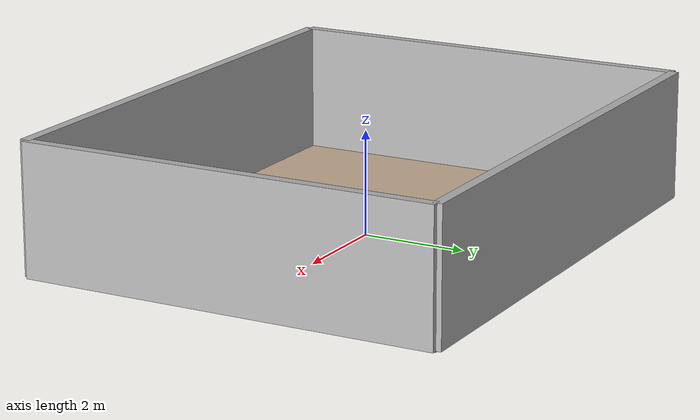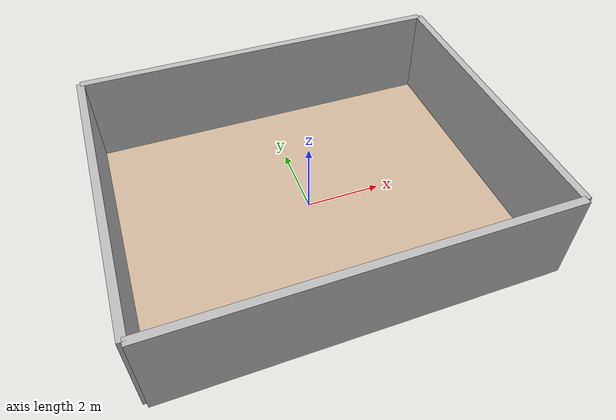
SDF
<sdf version="1.8">
 <world name="house">
  <plugin filename="gz-sim-physics-system" name="gz::sim::systems::Physics"/>
  <plugin filename="gz-sim-user-commands-system" name="gz::sim::systems::UserCommands"/>
  <plugin filename="gz-sim-scene-broadcaster-system" name="gz::sim::systems::SceneBroadcaster"/>
  <plugin filename="gz-sim-sensors-system" name="gz::sim::systems::Sensors">
   <render_engine>ogre2</render_engine>
  </plugin>
  <light type="directional" name="sun">
   <cast_shadows>false</cast_shadows>
   <pose>0 0 10 0 0 0</pose>
   <diffuse>1 1 1 1</diffuse>
   <specular>0.2 0.2 0.2 1</specular>
   <direction>-0.5 0.1 -0.9</direction>
  </light>
  <scene><ambient>0.6 0.6 0.6 1</ambient><background>0.8 0.8 0.8 1</background><shadows>false</shadows></scene>
  <model name="floor">
   <static>true</static>
   <link name="link">
    <collision name="collision"><geometry><box><size>10 8 0.05</size></box></geometry></collision>
    <visual name="visual">
     <geometry><box><size>10 8 0.05</size></box></geometry>
     <material><ambient>0.8 0.7 0.6 1</ambient><diffuse>0.8 0.7 0.6 1</diffuse></material>
    </visual>
   </link>
  </model>
  <model name="wall_south">
   <static>true</static>
   <pose>0 -4 1.25 0 0 0</pose>
   <link name="link">
    <collision name="collision"><geometry><box><size>10 0.2 2.5</size></box></geometry></collision>
    <visual name="visual"><geometry><box><size>10 0.2 2.5</size></box></geometry></visual>
   </link>
  </model>
  <model name="wall_north">
   <static>true</static>
   <pose>0 4 1.25 0 0 0</pose>
   <link name="link">
    <collision name="collision"><geometry><box><size>10 0.2 2.5</size></box></geometry></collision>
    <visual name="visual"><geometry><box><size>10 0.2 2.5</size></box></geometry></visual>
   </link>
  </model>
  <model name="wall_west">
   <static>true</static>
   <pose>-5 0 1.25 0 0 0</pose>
   <link name="link">
    <collision name="collision"><geometry><box><size>0.2 8 2.5</size></box></geometry></collision>
    <visual name="visual"><geometry><box><size>0.2 8 2.5</size></box></geometry></visual>
   </link>
  </model>
  <model name="wall_east">
   <static>true</static>
   <pose>5 0 1.25 0 0 0</pose>
   <link name="link">
    <collision name="collision"><geometry><box><size>0.2 8 2.5</size></box></geometry></collision>
    <visual name="visual"><geometry><box><size>0.2 8 2.5</size></box></geometry></visual>
   </link>
  </model>
 </world>
</sdf>
